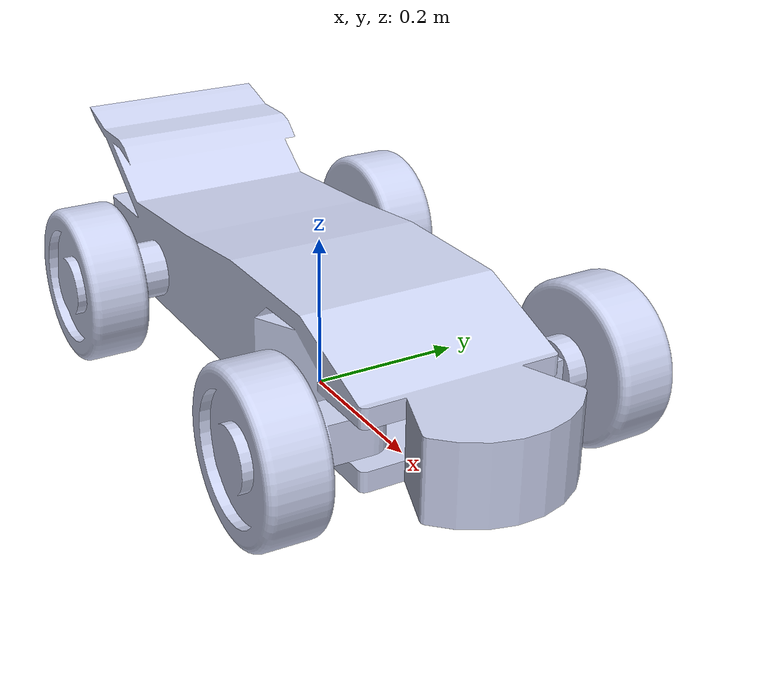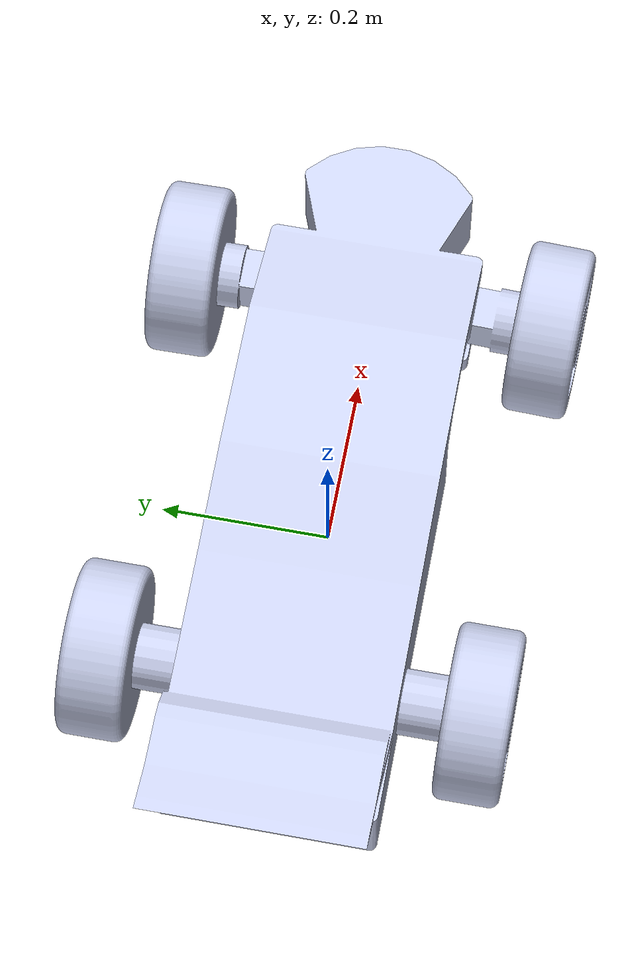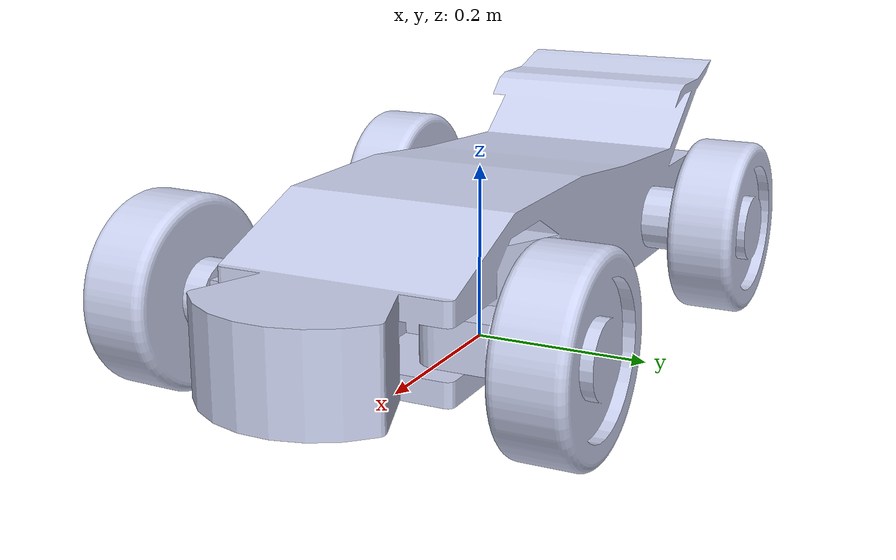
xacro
<?xml version="1.0" encoding="utf-8"?>
<robot
  name="robo_car">

  <!-- BASE  LINK -->
  <link
    name="dummy_link">
  </link>

  <!-- BASE FOOTPRINT LINK -->
  <joint name="dummy_joint" type="fixed">
    <parent link="dummy_link"/>
    <child link="Chassis"/>
    <origin xyz="0 0 0" rpy="0 0 0" />
    <axis
    xyz="0 0 0" />
  </joint>

  <!-- CHASSIS LINK-->
  <link
    name="Chassis">
    <inertial>
      <origin
        xyz="-0.0103462273341146 -2.07617491865264E-07 0.123284817346471"
        rpy="0 0 0" />
      <mass
        value="23.3799371164355" />
      <inertia
        ixx="0.157573739259077"
        ixy="0.000119732264766818"
        ixz="0.0250783025046396"
        iyy="1.20795077711847"
        iyz="2.95993541448176E-07"
        izz="1.27270240514744" />
    </inertial>
    <visual>
      <origin
        xyz="0 0 0"
        rpy="0 0 0" />
      <geometry>
        <mesh
          filename="package://robo_car/meshes/Chassis.STL" />
      </geometry>
      <material
        name="">
        <color
          rgba="0.792156862745098 0.819607843137255 0.933333333333333 1" />
      </material>
    </visual>
    <collision>
      <origin
        xyz="0 0 0"
        rpy="0 0 0" />
      <geometry>
        <mesh
          filename="package://robo_car/meshes/Chassis.STL" />
      </geometry>
    </collision>
  </link>
  <!-- REAR SHAFT -->
  <link
    name="Rear_shaft">
    <inertial>
      <origin
        xyz="0 0 -1.11022302462516E-16"
        rpy="0 0 0" />
      <mass
        value="2.08499993499038" />
      <inertia
        ixx="0.0370759327564845"
        ixy="1.19804340059648E-19"
        ixz="2.70164934993595E-34"
        iyy="0.0370759327564845"
        iyz="2.06540513858489E-19"
        izz="0.0015133033778157" />
    </inertial>
    <visual>
      <origin
        xyz="0 0 0"
        rpy="0 0 0" />
      <geometry>
        <mesh
          filename="package://robo_car/meshes/Rear_shaft.STL" />
      </geometry>
      <material
        name="">
        <color
          rgba="0.792156862745098 0.819607843137255 0.933333333333333 1" />
      </material>
    </visual>
    <collision>
      <origin
        xyz="0 0 0"
        rpy="0 0 0" />
      <geometry>
        <mesh
          filename="package://robo_car/meshes/Rear_shaft.STL" />
      </geometry>
    </collision>
  </link>
  <joint
    name="Rear_shaft_joint"
    type="continuous">
    <origin
      xyz="-0.224746997513262 0 0.10293611342508"
      rpy="1.5707963267949 0 3.14159265358979" />
    <parent
      link="Chassis" />
    <child
      link="Rear_shaft" />
    <axis
      xyz="0 0 1" />
  </joint>

  <!-- REAR RIGHT WHEEL -->
  <link
    name="Rear_right_wheel">
    <inertial>
      <origin
        xyz="0 0 0.0392290706074728"
        rpy="0 0 0" />
      <mass
        value="2.04635551013629" />
      <inertia
        ixx="0.00676619149168084"
        ixy="-1.2468929200419E-18"
        ixz="1.18764787385904E-20"
        iyy="0.00676619149168083"
        iyz="1.33633203056561E-19"
        izz="0.0117296858492282" />
    </inertial>
    <visual>
      <origin
        xyz="0 0 0"
        rpy="0 0 0" />
      <geometry>
        <mesh
          filename="package://robo_car/meshes/Rear_right_wheel.STL" />
      </geometry>
      <material
        name="">
        <color
          rgba="0.792156862745098 0.819607843137255 0.933333333333333 1" />
      </material>
    </visual>
    <collision>
      <origin
        xyz="0 0 0"
        rpy="0 0 0" />
      <geometry>
        <mesh
          filename="package://robo_car/meshes/Rear_right_wheel.STL" />
      </geometry>
      <surface>
        <friction>
          <ode>
            <mu>100000.0</mu>
            <mu2>100000.0</mu2>
          </ode>
        </friction>
        <contact>
          <ode>
            <min_depth>0.003</min_depth>
          </ode>
        </contact>
      </surface>
    </collision>
  </link>
  <joint
    name="Rear_right_wheel_joint"
    type="fixed">
    <origin
      xyz="0 0 -0.254"
      rpy="0 0 0" />
    <parent
      link="Rear_shaft" />
    <child
      link="Rear_right_wheel" />
    <axis
      xyz="0 0 0" />
  </joint>

  <!-- REAR LEFT WHEEL -->
  <link
    name="Rear_left_wheel">
    <inertial>
      <origin
        xyz="-1.11022302462516E-16 0 -0.0392290706074729"
        rpy="0 0 0" />
      <mass
        value="2.04635551013629" />
      <inertia
        ixx="0.00676619149168085"
        ixy="5.55715729148287E-19"
        ixz="-1.05877140014832E-20"
        iyy="0.00676619149168085"
        iyz="-4.36011621144649E-20"
        izz="0.0117296858492282" />
    </inertial>
    <visual>
      <origin
        xyz="0 0 0"
        rpy="0 0 0" />
      <geometry>
        <mesh
          filename="package://robo_car/meshes/Rear_left_wheel.STL" />
      </geometry>
      <material
        name="">
        <color
          rgba="0.792156862745098 0.819607843137255 0.933333333333333 1" />
      </material>
    </visual>
    <collision>
      <origin
        xyz="0 0 0"
        rpy="0 0 0" />
      <geometry>
        <mesh
          filename="package://robo_car/meshes/Rear_left_wheel.STL" />
      </geometry>
      <surface>
        <friction>
          <ode>
            <mu>100000.0</mu>
            <mu2>100000.0</mu2>
          </ode>
        </friction>
        <contact>
          <ode>
            <min_depth>0.003</min_depth>
          </ode>
        </contact>
      </surface>
    </collision>
  </link>
  <joint
    name="Rear_left_wheel_joint"
    type="fixed">
    <origin
      xyz="0 0 0.254"
      rpy="0 0 0" />
    <parent
      link="Rear_shaft" />
    <child
      link="Rear_left_wheel" />
    <axis
      xyz="0 0 0" />
  </joint>

  <!-- FRONT LEFT WHEEL SHAFT  -->
  <link
    name="Front_left_shaft">
    <inertial>
      <origin
        xyz="-4.16333634234434E-17 0.0752407405474483 0"
        rpy="0 0 0" />
      <mass
        value="0.488548380180526" />
      <inertia
        ixx="0.000875162165757892"
        ixy="1.39336919823332E-19"
        ixz="7.47110791999739E-22"
        iyy="0.000317315913187682"
        iyz="1.63858254292143E-19"
        izz="0.000879594996011267" />
    </inertial>
    <visual>
      <origin
        xyz="0 0 0"
        rpy="0 0 0" />
      <geometry>
        <mesh
          filename="package://robo_car/meshes/Front_left_shaft.STL" />
      </geometry>
      <material
        name="">
        <color
          rgba="0.792156862745098 0.819607843137255 0.933333333333333 1" />
      </material>
    </visual>
    <collision>
      <origin
        xyz="0 0 0"
        rpy="0 0 0" />
      <geometry>
        <mesh
          filename="package://robo_car/meshes/Front_left_shaft.STL" />
      </geometry>
    </collision>
  </link>
  <joint
    name="Front_left_shaft_joint"
    type="revolute">
    <origin
      xyz="0.271315002486738 0.0958849999999999 0.10293611342508"
      rpy="0 0 0.0113510822667684" />
    <parent
      link="Chassis" />
    <child
      link="Front_left_shaft" />
    <axis
      xyz="0 0 1" />
    <limit
      lower="-0.872665"
      upper="0.872665"
      effort="100"
      velocity="10" />
  </joint>
  <!-- FRONT LEFT WHEEL  -->
  <link
    name="Front_left_wheel">
    <inertial>
      <origin
        xyz="0 0 -0.0392290706074729"
        rpy="0 0 0" />
      <mass
        value="2.04635551013629" />
      <inertia
        ixx="0.00676619149168084"
        ixy="-7.68897511059205E-20"
        ixz="1.42301535138722E-19"
        iyy="0.00676619149168084"
        iyz="1.42450473063605E-20"
        izz="0.0117296858492282" />
    </inertial>
    <visual>
      <origin
        xyz="0 0 0"
        rpy="0 0 0" />
      <geometry>
        <mesh
          filename="package://robo_car/meshes/Front_left_wheel.STL" />
      </geometry>
      <material
        name="">
        <color
          rgba="0.792156862745098 0.819607843137255 0.933333333333333 1" />
      </material>
    </visual>
    <collision>
      <origin
        xyz="0 0 0"
        rpy="0 0 0" />
      <geometry>
        <mesh
          filename="package://robo_car/meshes/Front_left_wheel.STL" />
      </geometry>
      <surface>
        <friction>
          <ode>
            <mu>100000.0</mu>
            <mu2>100000.0</mu2>
          </ode>
        </friction>
        <contact>
          <ode>
            <min_depth>0.003</min_depth>
          </ode>
        </contact>
      </surface>
    </collision>
  </link>
  <joint
    name="Front_left_wheel_joint"
    type="continuous">
    <origin
      xyz="0 0.158750000000003 0"
      rpy="1.5707963267949 0 3.14159265358979" />
    <parent
      link="Front_left_shaft" />
    <child
      link="Front_left_wheel" />
    <axis
      xyz="0 0 1" />
      <limit
      effort="100"
      velocity="10" />
  </joint>

  <!-- FRONT RIGHT WHEEL SHAFT  -->
  <link
    name="Front_right_shaft">
    <inertial>
      <origin
        xyz="-0.00323605114559641 -0.075171118197826 0"
        rpy="0 0 0" />
      <mass
        value="0.488548380180526" />
      <inertia
        ixx="0.000874130262101801"
        ixy="-2.39703725963753E-05"
        ixz="-9.2511483260975E-21"
        iyy="0.000318347816843774"
        iyz="-1.55159136928612E-19"
        izz="0.000879594996011268" />
    </inertial>
    <visual>
      <origin
        xyz="0 0 0"
        rpy="0 0 0" />
      <geometry>
        <mesh
          filename="package://robo_car/meshes/Front_right_shaft.STL" />
      </geometry>
      <material
        name="">
        <color
          rgba="0.792156862745098 0.819607843137255 0.933333333333333 1" />
      </material>
    </visual>
    <collision>
      <origin
        xyz="0 0 0"
        rpy="0 0 0" />
      <geometry>
        <mesh
          filename="package://robo_car/meshes/Front_right_shaft.STL" />
      </geometry>
    </collision>
  </link>
  <joint
    name="Front_right_shaft_joint"
    type="revolute">
    <origin
      xyz="0.271315002486738 -0.0958849999999998 0.10293611342508"
      rpy="0 0 0.0113510822667684" />
    <parent
      link="Chassis" />
    <child
      link="Front_right_shaft" />
    <axis
      xyz="0 0 1" />
    <limit
      lower="-0.872665"
      upper="0.872665"
      effort="100"
      velocity="10" />
  </joint>

    <!-- FRONT RIGHT WHEEL  -->
  <link
    name="Front_right_wheel">
    <inertial>
      <origin
        xyz="-0.00168721463872283 -5.55111512312578E-17 0.0391927708575061"
        rpy="0 0 0" />
      <mass
        value="2.04635551013629" />
      <inertia
        ixx="0.00677537296050123"
        ixy="3.25591294534012E-19"
        ixz="-0.000213278853415704"
        iyy="0.00676619149168084"
        iyz="-2.85912987260344E-18"
        izz="0.0117205043804078" />
    </inertial>
    <visual>
      <origin
        xyz="0 0 0"
        rpy="0 0 0" />
      <geometry>
        <mesh
          filename="package://robo_car/meshes/Front_right_wheel.STL" />
      </geometry>
      <material
        name="">
        <color
          rgba="0.792156862745098 0.819607843137255 0.933333333333333 1" />
      </material>
    </visual>
    <collision>
      <origin
        xyz="0 0 0"
        rpy="0 0 0" />
      <geometry>
        <mesh
          filename="package://robo_car/meshes/Front_right_wheel.STL" />
      </geometry>
      <surface>
        <friction>
          <ode>
            <mu>100000.0</mu>
            <mu2>100000.0</mu2>
          </ode>
        </friction>
        <contact>
          <ode>
            <min_depth>0.003</min_depth>
          </ode>
        </contact>
      </surface>
    </collision>
  </link>
  <joint
    name="Front_right_wheel_joint"
    type="continuous">
    <origin
      xyz="-0.00682772545333332 -0.158603104210273 0"
      rpy="1.5707963267949 0 3.14159265358979" />
    <parent
      link="Front_right_shaft" />
    <child
      link="Front_right_wheel" />
    <axis
      xyz="-0.0430092941942245 0 0.99907467219068" />
      <limit
      effort="100"
      velocity="10" />
  </joint>

  <!-- WHEEL MOTORS -->
  <transmission name="Rear_wheel_motor">
  <type>transmission_interface/SimpleTransmission</type>
  <joint name="Rear_shaft_joint">
    <hardwareInterface>hardware_interface/VelocityJointInterface</hardwareInterface>
  </joint>
  <actuator name="Rear_wheel_motor">
    <mechanicalReduction>50</mechanicalReduction>
    <hardwareInterface>hardware_interface/VelocityJointInterface</hardwareInterface>
  </actuator>
  </transmission>

  <transmission name="Front_left_wheel_motor">
  <type>transmission_interface/SimpleTransmission</type>
  <joint name="Front_left_shaft_joint">
    <hardwareInterface>hardware_interface/EffortJointInterface</hardwareInterface>
  </joint>
  <actuator name="Front_left_wheel_motor">
    <mechanicalReduction>50</mechanicalReduction>
    <hardwareInterface>hardware_interface/EffortJointInterface</hardwareInterface>
  </actuator>
  </transmission>

  <transmission name="Front_right_wheel_motor">
  <type>transmission_interface/SimpleTransmission</type>
  <joint name="Front_right_shaft_joint">
    <hardwareInterface>hardware_interface/EffortJointInterface</hardwareInterface>
  </joint>
  <actuator name="Front_right_wheel_motor">
    <mechanicalReduction>50</mechanicalReduction>
    <hardwareInterface>hardware_interface/EffortJointInterface</hardwareInterface>
  </actuator>
  </transmission>
</robot>
